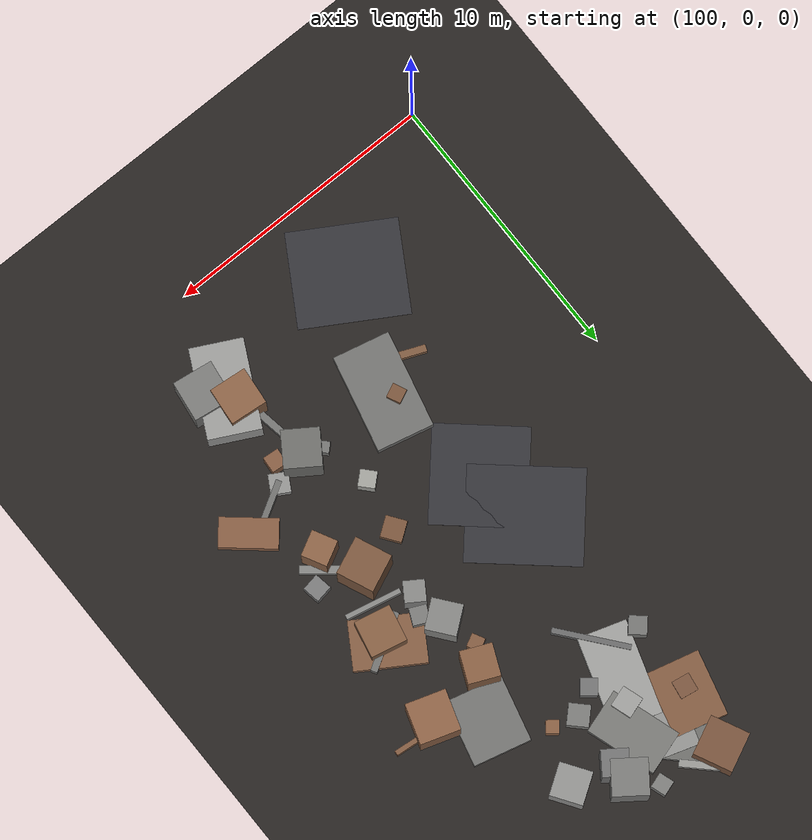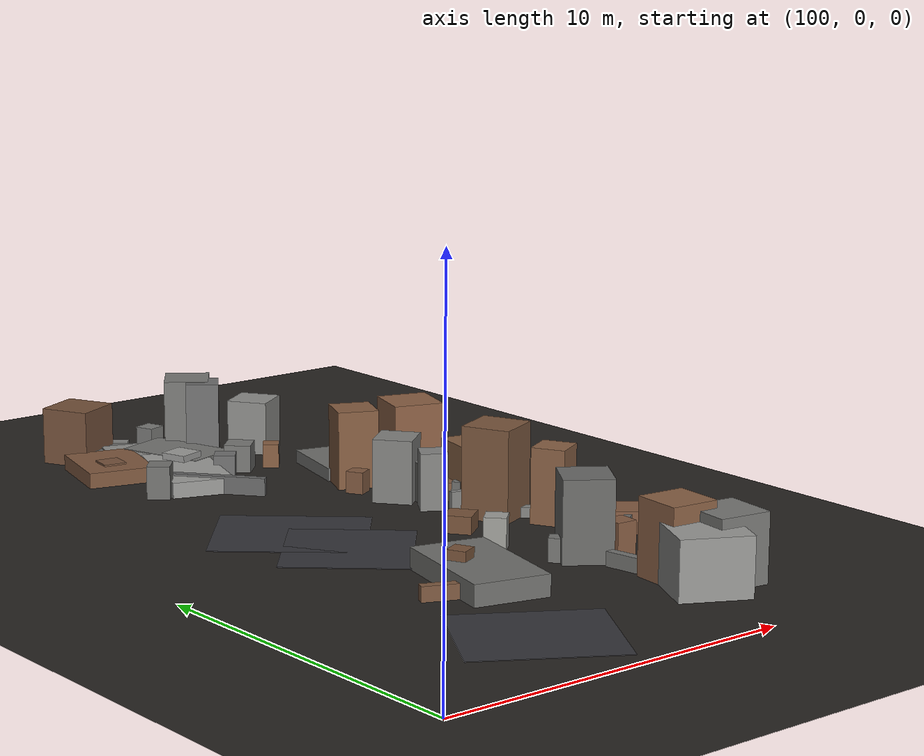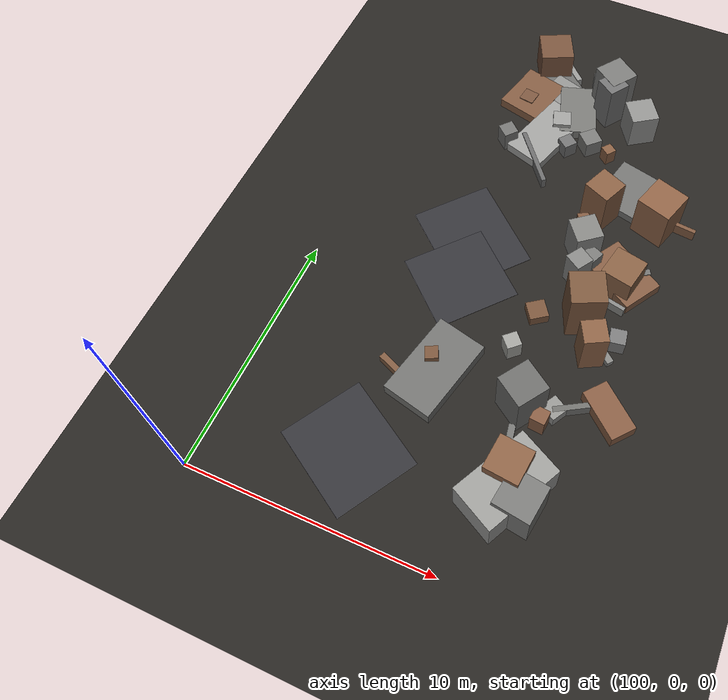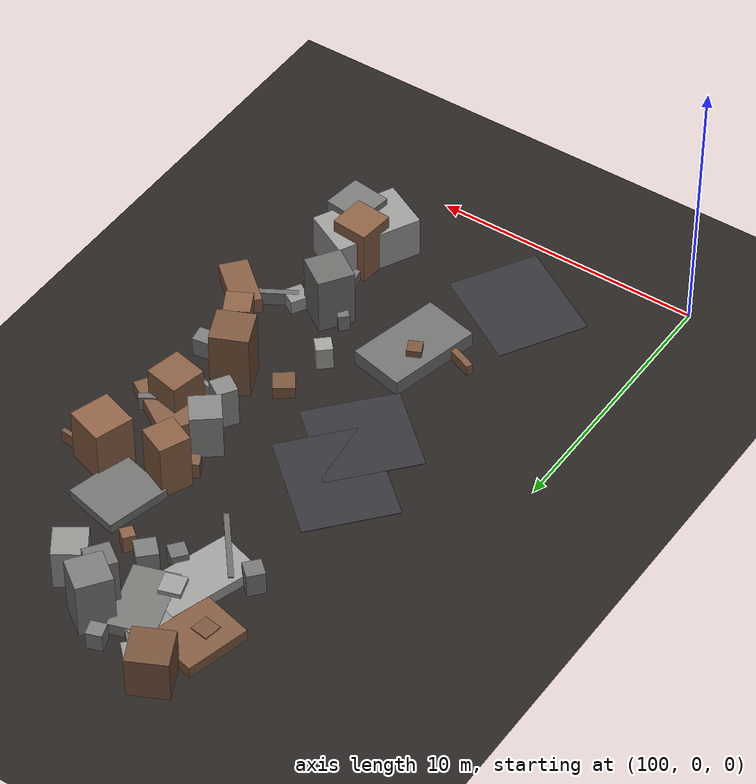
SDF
<sdf version="1.6">
 <world name="navitas_arena">
  <model name="ground_plane">
   <static>true</static>
   <link name="link">
    <collision name="collision">
     <geometry><plane><normal>0 0 1</normal><size>400 400</size></plane></geometry>
     <surface><friction><ode><mu>0.750</mu><mu2>0.750</mu2></ode></friction></surface>
    </collision>
    <visual name="visual">
     <cast_shadows>false</cast_shadows>
     <geometry><plane><normal>0 0 1</normal><size>400 400</size></plane></geometry>
     <material><ambient>0.150 0.140 0.130 1</ambient><diffuse>0.150 0.140 0.130 1</diffuse></material>
    </visual>
   </link>
  </model>
  <model name="road_zor_3_12">
   <static>true</static>
   <pose>105.164 2.889 0.040 0 0 2.604</pose>
   <link name="link">
    <collision name="col"><geometry><box><size>3.940 3.400 0.020</size></box></geometry></collision>
    <visual name="vis">
     <geometry><box><size>3.940 3.400 0.020</size></box></geometry>
     <material><ambient>0.20 0.20 0.22 1</ambient><diffuse>0.20 0.20 0.22 1</diffuse></material>
    </visual>
   </link>
  </model>
  <model name="road_zor_3_16">
   <static>true</static>
   <pose>106.045 11.153 0.040 0 0 0.851</pose>
   <link name="link">
    <collision name="col"><geometry><box><size>3.501 3.400 0.020</size></box></geometry></collision>
    <visual name="vis">
     <geometry><box><size>3.501 3.400 0.020</size></box></geometry>
     <material><ambient>0.20 0.20 0.22 1</ambient><diffuse>0.20 0.20 0.22 1</diffuse></material>
    </visual>
   </link>
  </model>
  <model name="road_zor_3_17">
   <static>true</static>
   <pose>105.694 13.180 0.040 0 0 2.427</pose>
   <link name="link">
    <collision name="col"><geometry><box><size>4.101 3.400 0.020</size></box></geometry></collision>
    <visual name="vis">
     <geometry><box><size>4.101 3.400 0.020</size></box></geometry>
     <material><ambient>0.20 0.20 0.22 1</ambient><diffuse>0.20 0.20 0.22 1</diffuse></material>
    </visual>
   </link>
  </model>
  <model name="deb_zor_10">
   <static>true</static>
   <pose>108.785 21.783 1.105 0 0 0.958</pose>
   <link name="link">
    <collision name="col"><geometry><box><size>0.952 0.952 2.209</size></box></geometry></collision>
    <visual name="vis">
     <geometry><box><size>0.952 0.952 2.209</size></box></geometry>
     <material><ambient>0.44 0.44 0.44 1</ambient><diffuse>0.44 0.44 0.44 1</diffuse></material>
    </visual>
   </link>
  </model>
  <model name="deb_zor_15">
   <static>true</static>
   <pose>109.598 7.117 0.321 0 0 2.331</pose>
   <link name="link">
    <collision name="col"><geometry><box><size>0.403 0.403 0.643</size></box></geometry></collision>
    <visual name="vis">
     <geometry><box><size>0.403 0.403 0.643</size></box></geometry>
     <material><ambient>0.45 0.45 0.44 1</ambient><diffuse>0.45 0.45 0.44 1</diffuse></material>
    </visual>
   </link>
  </model>
  <model name="deb_zor_16">
   <static>true</static>
   <pose>106.533 7.266 0.431 0 0 2.003</pose>
   <link name="link">
    <collision name="col"><geometry><box><size>0.523 0.523 0.862</size></box></geometry></collision>
    <visual name="vis">
     <geometry><box><size>0.523 0.523 0.862</size></box></geometry>
     <material><ambient>0.47 0.33 0.23 1</ambient><diffuse>0.47 0.33 0.23 1</diffuse></material>
    </visual>
   </link>
  </model>
  <model name="deb_zor_25">
   <static>true</static>
   <pose>110.323 6.868 1.115 0 0 0.977</pose>
   <link name="link">
    <collision name="col"><geometry><box><size>1.346 1.346 2.230</size></box></geometry></collision>
    <visual name="vis">
     <geometry><box><size>1.346 1.346 2.230</size></box></geometry>
     <material><ambient>0.42 0.42 0.41 1</ambient><diffuse>0.42 0.42 0.41 1</diffuse></material>
    </visual>
   </link>
  </model>
  <model name="deb_zor_44">
   <static>true</static>
   <pose>112.557 7.672 0.268 0 0 0.530</pose>
   <link name="link">
    <collision name="col"><geometry><box><size>2.456 0.216 0.537</size></box></geometry></collision>
    <visual name="vis">
     <geometry><box><size>2.456 0.216 0.537</size></box></geometry>
     <material><ambient>0.43 0.43 0.42 1</ambient><diffuse>0.43 0.43 0.42 1</diffuse></material>
    </visual>
   </link>
  </model>
  <model name="deb_zor_48">
   <static>true</static>
   <pose>112.064 13.667 0.252 0 0 2.584</pose>
   <link name="link">
    <collision name="col"><geometry><box><size>2.591 1.748 0.505</size></box></geometry></collision>
    <visual name="vis">
     <geometry><box><size>2.591 1.748 0.505</size></box></geometry>
     <material><ambient>0.51 0.36 0.26 1</ambient><diffuse>0.51 0.36 0.26 1</diffuse></material>
    </visual>
   </link>
  </model>
  <model name="deb_zor_80">
   <static>true</static>
   <pose>106.430 23.582 0.218 0 0 2.368</pose>
   <link name="link">
    <collision name="col"><geometry><box><size>1.550 0.252 0.436</size></box></geometry></collision>
    <visual name="vis">
     <geometry><box><size>1.550 0.252 0.436</size></box></geometry>
     <material><ambient>0.58 0.58 0.57 1</ambient><diffuse>0.58 0.58 0.57 1</diffuse></material>
    </visual>
   </link>
  </model>
  <model name="deb_zor_90">
   <static>true</static>
   <pose>111.975 9.892 1.053 0 0 2.058</pose>
   <link name="link">
    <collision name="col"><geometry><box><size>0.951 0.951 2.106</size></box></geometry></collision>
    <visual name="vis">
     <geometry><box><size>0.951 0.951 2.106</size></box></geometry>
     <material><ambient>0.54 0.38 0.27 1</ambient><diffuse>0.54 0.38 0.27 1</diffuse></material>
    </visual>
   </link>
  </model>
  <model name="deb_zor_95">
   <static>true</static>
   <pose>106.635 17.911 0.254 0 0 2.252</pose>
   <link name="link">
    <collision name="col"><geometry><box><size>2.767 0.195 0.508</size></box></geometry></collision>
    <visual name="vis">
     <geometry><box><size>2.767 0.195 0.508</size></box></geometry>
     <material><ambient>0.41 0.41 0.41 1</ambient><diffuse>0.41 0.41 0.41 1</diffuse></material>
    </visual>
   </link>
  </model>
  <model name="deb_zor_96">
   <static>true</static>
   <pose>105.555 23.494 0.812 0 0 2.023</pose>
   <link name="link">
    <collision name="col"><geometry><box><size>1.450 1.450 1.625</size></box></geometry></collision>
    <visual name="vis">
     <geometry><box><size>1.450 1.450 1.625</size></box></geometry>
     <material><ambient>0.46 0.32 0.23 1</ambient><diffuse>0.46 0.32 0.23 1</diffuse></material>
    </visual>
   </link>
  </model>
  <model name="deb_zor_104">
   <static>true</static>
   <pose>112.147 13.606 0.280 0 0 0.540</pose>
   <link name="link">
    <collision name="col"><geometry><box><size>2.168 0.245 0.561</size></box></geometry></collision>
    <visual name="vis">
     <geometry><box><size>2.168 0.245 0.561</size></box></geometry>
     <material><ambient>0.44 0.44 0.43 1</ambient><diffuse>0.44 0.44 0.43 1</diffuse></material>
    </visual>
   </link>
  </model>
  <model name="deb_zor_105">
   <static>true</static>
   <pose>109.767 15.569 0.311 0 0 2.051</pose>
   <link name="link">
    <collision name="col"><geometry><box><size>0.497 0.497 0.622</size></box></geometry></collision>
    <visual name="vis">
     <geometry><box><size>0.497 0.497 0.622</size></box></geometry>
     <material><ambient>0.50 0.35 0.25 1</ambient><diffuse>0.50 0.35 0.25 1</diffuse></material>
    </visual>
   </link>
  </model>
  <model name="deb_zor_110">
   <static>true</static>
   <pose>105.181 21.145 0.244 0 0 1.419</pose>
   <link name="link">
    <collision name="col"><geometry><box><size>0.660 0.660 0.487</size></box></geometry></collision>
    <visual name="vis">
     <geometry><box><size>0.660 0.660 0.487</size></box></geometry>
     <material><ambient>0.47 0.33 0.24 1</ambient><diffuse>0.47 0.33 0.24 1</diffuse></material>
    </visual>
   </link>
  </model>
  <model name="deb_zor_113">
   <static>true</static>
   <pose>105.613 6.257 0.203 0 0 2.752</pose>
   <link name="link">
    <collision name="col"><geometry><box><size>1.916 0.252 0.406</size></box></geometry></collision>
    <visual name="vis">
     <geometry><box><size>1.916 0.252 0.406</size></box></geometry>
     <material><ambient>0.49 0.35 0.25 1</ambient><diffuse>0.49 0.35 0.25 1</diffuse></material>
    </visual>
   </link>
  </model>
  <model name="deb_zor_114">
   <static>true</static>
   <pose>107.523 21.267 0.230 0 0 1.885</pose>
   <link name="link">
    <collision name="col"><geometry><box><size>2.643 1.626 0.459</size></box></geometry></collision>
    <visual name="vis">
     <geometry><box><size>2.643 1.626 0.459</size></box></geometry>
     <material><ambient>0.46 0.46 0.45 1</ambient><diffuse>0.46 0.46 0.45 1</diffuse></material>
    </visual>
   </link>
  </model>
  <model name="deb_zor_116">
   <static>true</static>
   <pose>113.159 16.905 0.257 0 0 3.043</pose>
   <link name="link">
    <collision name="col"><geometry><box><size>2.148 0.173 0.513</size></box></geometry></collision>
    <visual name="vis">
     <geometry><box><size>2.148 0.173 0.513</size></box></geometry>
     <material><ambient>0.50 0.35 0.25 1</ambient><diffuse>0.50 0.35 0.25 1</diffuse></material>
    </visual>
   </link>
  </model>
  <model name="deb_zor_125">
   <static>true</static>
   <pose>110.701 13.689 0.558 0 0 2.713</pose>
   <link name="link">
    <collision name="col"><geometry><box><size>0.617 0.617 1.115</size></box></geometry></collision>
    <visual name="vis">
     <geometry><box><size>0.617 0.617 1.115</size></box></geometry>
     <material><ambient>0.47 0.47 0.46 1</ambient><diffuse>0.47 0.47 0.46 1</diffuse></material>
    </visual>
   </link>
  </model>
  <model name="deb_zor_130">
   <static>true</static>
   <pose>109.143 8.936 0.444 0 0 2.312</pose>
   <link name="link">
    <collision name="col"><geometry><box><size>0.601 0.601 0.888</size></box></geometry></collision>
    <visual name="vis">
     <geometry><box><size>0.601 0.601 0.888</size></box></geometry>
     <material><ambient>0.62 0.62 0.60 1</ambient><diffuse>0.62 0.62 0.60 1</diffuse></material>
    </visual>
   </link>
  </model>
  <model name="deb_zor_131">
   <static>true</static>
   <pose>109.495 10.782 0.242 0 0 2.193</pose>
   <link name="link">
    <collision name="col"><geometry><box><size>0.769 0.769 0.485</size></box></geometry></collision>
    <visual name="vis">
     <geometry><box><size>0.769 0.769 0.485</size></box></geometry>
     <material><ambient>0.47 0.33 0.23 1</ambient><diffuse>0.47 0.33 0.23 1</diffuse></material>
    </visual>
   </link>
  </model>
  <model name="deb_zor_132">
   <static>true</static>
   <pose>111.169 11.312 1.278 0 0 0.412</pose>
   <link name="link">
    <collision name="col"><geometry><box><size>1.383 1.383 2.555</size></box></geometry></collision>
    <visual name="vis">
     <geometry><box><size>1.383 1.383 2.555</size></box></geometry>
     <material><ambient>0.48 0.34 0.24 1</ambient><diffuse>0.48 0.34 0.24 1</diffuse></material>
    </visual>
   </link>
  </model>
  <model name="deb_zor_153">
   <static>true</static>
   <pose>107.062 20.345 0.316 0 0 1.881</pose>
   <link name="link">
    <collision name="col"><geometry><box><size>0.786 0.786 0.633</size></box></geometry></collision>
    <visual name="vis">
     <geometry><box><size>0.786 0.786 0.633</size></box></geometry>
     <material><ambient>0.61 0.61 0.60 1</ambient><diffuse>0.61 0.61 0.60 1</diffuse></material>
    </visual>
   </link>
  </model>
  <model name="deb_zor_154">
   <static>true</static>
   <pose>111.200 6.491 0.477 0 0 1.488</pose>
   <link name="link">
    <collision name="col"><geometry><box><size>0.590 0.590 0.954</size></box></geometry></collision>
    <visual name="vis">
     <geometry><box><size>0.590 0.590 0.954</size></box></geometry>
     <material><ambient>0.52 0.36 0.26 1</ambient><diffuse>0.52 0.36 0.26 1</diffuse></material>
    </visual>
   </link>
  </model>
  <model name="deb_zor_157">
   <static>true</static>
   <pose>111.546 7.138 0.268 0 0 2.619</pose>
   <link name="link">
    <collision name="col"><geometry><box><size>0.713 0.713 0.536</size></box></geometry></collision>
    <visual name="vis">
     <geometry><box><size>0.713 0.713 0.536</size></box></geometry>
     <material><ambient>0.57 0.57 0.56 1</ambient><diffuse>0.57 0.57 0.56 1</diffuse></material>
    </visual>
   </link>
  </model>
  <model name="deb_zor_159">
   <static>true</static>
   <pose>108.704 22.465 1.110 0 0 0.942</pose>
   <link name="link">
    <collision name="col"><geometry><box><size>1.289 1.289 2.219</size></box></geometry></collision>
    <visual name="vis">
     <geometry><box><size>1.289 1.289 2.219</size></box></geometry>
     <material><ambient>0.47 0.47 0.46 1</ambient><diffuse>0.47 0.47 0.46 1</diffuse></material>
    </visual>
   </link>
  </model>
  <model name="deb_zor_160">
   <static>true</static>
   <pose>106.109 22.343 0.195 0 0 0.794</pose>
   <link name="link">
    <collision name="col"><geometry><box><size>2.033 1.423 0.391</size></box></geometry></collision>
    <visual name="vis">
     <geometry><box><size>2.033 1.423 0.391</size></box></geometry>
     <material><ambient>0.42 0.42 0.41 1</ambient><diffuse>0.42 0.42 0.41 1</diffuse></material>
    </visual>
   </link>
  </model>
  <model name="deb_zor_162">
   <static>true</static>
   <pose>110.336 21.368 0.780 0 0 0.592</pose>
   <link name="link">
    <collision name="col"><geometry><box><size>1.196 1.196 1.561</size></box></geometry></collision>
    <visual name="vis">
     <geometry><box><size>1.196 1.196 1.561</size></box></geometry>
     <material><ambient>0.56 0.56 0.55 1</ambient><diffuse>0.56 0.56 0.55 1</diffuse></material>
    </visual>
   </link>
  </model>
  <model name="deb_zor_168">
   <static>true</static>
   <pose>108.624 19.679 0.394 0 0 0.784</pose>
   <link name="link">
    <collision name="col"><geometry><box><size>0.768 0.768 0.788</size></box></geometry></collision>
    <visual name="vis">
     <geometry><box><size>0.768 0.768 0.788</size></box></geometry>
     <material><ambient>0.47 0.47 0.46 1</ambient><diffuse>0.47 0.47 0.46 1</diffuse></material>
    </visual>
   </link>
  </model>
  <model name="deb_zor_172">
   <static>true</static>
   <pose>105.303 21.391 0.219 0 0 1.325</pose>
   <link name="link">
    <collision name="col"><geometry><box><size>2.384 1.965 0.438</size></box></geometry></collision>
    <visual name="vis">
     <geometry><box><size>2.384 1.965 0.438</size></box></geometry>
     <material><ambient>0.50 0.35 0.25 1</ambient><diffuse>0.50 0.35 0.25 1</diffuse></material>
    </visual>
   </link>
  </model>
  <model name="deb_zor_173">
   <static>true</static>
   <pose>105.154 18.570 0.468 0 0 2.416</pose>
   <link name="link">
    <collision name="col"><geometry><box><size>0.650 0.650 0.936</size></box></geometry></collision>
    <visual name="vis">
     <geometry><box><size>0.650 0.650 0.936</size></box></geometry>
     <material><ambient>0.45 0.45 0.44 1</ambient><diffuse>0.45 0.45 0.44 1</diffuse></material>
    </visual>
   </link>
  </model>
  <model name="deb_zor_176">
   <static>true</static>
   <pose>111.979 10.560 0.138 0 0 2.457</pose>
   <link name="link">
    <collision name="col"><geometry><box><size>2.279 0.284 0.276</size></box></geometry></collision>
    <visual name="vis">
     <geometry><box><size>2.279 0.284 0.276</size></box></geometry>
     <material><ambient>0.51 0.51 0.50 1</ambient><diffuse>0.51 0.51 0.50 1</diffuse></material>
    </visual>
   </link>
  </model>
  <model name="deb_zor_178">
   <static>true</static>
   <pose>110.146 14.314 0.896 0 0 0.671</pose>
   <link name="link">
    <collision name="col"><geometry><box><size>1.118 1.118 1.793</size></box></geometry></collision>
    <visual name="vis">
     <geometry><box><size>1.118 1.118 1.793</size></box></geometry>
     <material><ambient>0.51 0.51 0.50 1</ambient><diffuse>0.51 0.51 0.50 1</diffuse></material>
    </visual>
   </link>
  </model>
  <model name="deb_zor_183">
   <static>true</static>
   <pose>107.748 19.144 0.357 0 0 2.461</pose>
   <link name="link">
    <collision name="col"><geometry><box><size>0.604 0.604 0.713</size></box></geometry></collision>
    <visual name="vis">
     <geometry><box><size>0.604 0.604 0.713</size></box></geometry>
     <material><ambient>0.44 0.44 0.44 1</ambient><diffuse>0.44 0.44 0.44 1</diffuse></material>
    </visual>
   </link>
  </model>
  <model name="deb_zor_184">
   <static>true</static>
   <pose>111.643 12.352 0.246 0 0 2.931</pose>
   <link name="link">
    <collision name="col"><geometry><box><size>2.060 0.168 0.493</size></box></geometry></collision>
    <visual name="vis">
     <geometry><box><size>2.060 0.168 0.493</size></box></geometry>
     <material><ambient>0.52 0.52 0.51 1</ambient><diffuse>0.52 0.52 0.51 1</diffuse></material>
    </visual>
   </link>
  </model>
  <model name="deb_zor_186">
   <static>true</static>
   <pose>106.308 21.411 0.214 0 0 1.263</pose>
   <link name="link">
    <collision name="col"><geometry><box><size>2.840 1.518 0.427</size></box></geometry></collision>
    <visual name="vis">
     <geometry><box><size>2.840 1.518 0.427</size></box></geometry>
     <material><ambient>0.56 0.56 0.55 1</ambient><diffuse>0.56 0.56 0.55 1</diffuse></material>
    </visual>
   </link>
  </model>
  <model name="deb_zor_187">
   <static>true</static>
   <pose>112.097 13.328 0.779 0 0 2.931</pose>
   <link name="link">
    <collision name="col"><geometry><box><size>1.335 1.335 1.559</size></box></geometry></collision>
    <visual name="vis">
     <geometry><box><size>1.335 1.335 1.559</size></box></geometry>
     <material><ambient>0.52 0.37 0.26 1</ambient><diffuse>0.52 0.37 0.26 1</diffuse></material>
    </visual>
   </link>
  </model>
  <model name="deb_zor_198">
   <static>true</static>
   <pose>112.802 10.761 0.373 0 0 1.742</pose>
   <link name="link">
    <collision name="col"><geometry><box><size>0.642 0.642 0.745</size></box></geometry></collision>
    <visual name="vis">
     <geometry><box><size>0.642 0.642 0.745</size></box></geometry>
     <material><ambient>0.47 0.47 0.47 1</ambient><diffuse>0.47 0.47 0.47 1</diffuse></material>
    </visual>
   </link>
  </model>
  <model name="deb_zor_212">
   <static>true</static>
   <pose>113.430 7.817 0.307 0 0 2.438</pose>
   <link name="link">
    <collision name="col"><geometry><box><size>2.073 1.050 0.614</size></box></geometry></collision>
    <visual name="vis">
     <geometry><box><size>2.073 1.050 0.614</size></box></geometry>
     <material><ambient>0.52 0.36 0.26 1</ambient><diffuse>0.52 0.36 0.26 1</diffuse></material>
    </visual>
   </link>
  </model>
  <model name="deb_zor_225">
   <static>true</static>
   <pose>111.264 11.681 0.334 0 0 2.572</pose>
   <link name="link">
    <collision name="col"><geometry><box><size>0.538 0.538 0.668</size></box></geometry></collision>
    <visual name="vis">
     <geometry><box><size>0.538 0.538 0.668</size></box></geometry>
     <material><ambient>0.48 0.34 0.24 1</ambient><diffuse>0.48 0.34 0.24 1</diffuse></material>
    </visual>
   </link>
  </model>
  <model name="deb_zor_228">
   <static>true</static>
   <pose>106.667 19.477 0.223 0 0 1.262</pose>
   <link name="link">
    <collision name="col"><geometry><box><size>3.390 1.794 0.445</size></box></geometry></collision>
    <visual name="vis">
     <geometry><box><size>3.390 1.794 0.445</size></box></geometry>
     <material><ambient>0.61 0.61 0.60 1</ambient><diffuse>0.61 0.61 0.60 1</diffuse></material>
    </visual>
   </link>
  </model>
  <model name="deb_zor_244">
   <static>true</static>
   <pose>111.671 3.212 0.934 0 0 1.436</pose>
   <link name="link">
    <collision name="col"><geometry><box><size>1.485 1.485 1.868</size></box></geometry></collision>
    <visual name="vis">
     <geometry><box><size>1.485 1.485 1.868</size></box></geometry>
     <material><ambient>0.47 0.47 0.46 1</ambient><diffuse>0.47 0.47 0.46 1</diffuse></material>
    </visual>
   </link>
  </model>
  <model name="deb_zor_255">
   <static>true</static>
   <pose>112.571 16.732 1.015 0 0 2.831</pose>
   <link name="link">
    <collision name="col"><geometry><box><size>1.469 1.469 2.031</size></box></geometry></collision>
    <visual name="vis">
     <geometry><box><size>1.469 1.469 2.031</size></box></geometry>
     <material><ambient>0.55 0.38 0.27 1</ambient><diffuse>0.55 0.38 0.27 1</diffuse></material>
    </visual>
   </link>
  </model>
  <model name="deb_zor_264">
   <static>true</static>
   <pose>111.116 17.883 0.186 0 0 1.329</pose>
   <link name="link">
    <collision name="col"><geometry><box><size>2.395 2.123 0.371</size></box></geometry></collision>
    <visual name="vis">
     <geometry><box><size>2.395 2.123 0.371</size></box></geometry>
     <material><ambient>0.44 0.44 0.43 1</ambient><diffuse>0.44 0.44 0.43 1</diffuse></material>
    </visual>
   </link>
  </model>
  <model name="deb_zor_267">
   <static>true</static>
   <pose>107.891 23.267 0.353 0 0 0.320</pose>
   <link name="link">
    <collision name="col"><geometry><box><size>0.565 0.565 0.706</size></box></geometry></collision>
    <visual name="vis">
     <geometry><box><size>0.565 0.565 0.706</size></box></geometry>
     <material><ambient>0.48 0.48 0.47 1</ambient><diffuse>0.48 0.48 0.47 1</diffuse></material>
    </visual>
   </link>
  </model>
  <model name="deb_zor_270">
   <static>true</static>
   <pose>110.872 4.125 1.039 0 0 1.475</pose>
   <link name="link">
    <collision name="col"><geometry><box><size>1.367 1.367 2.078</size></box></geometry></collision>
    <visual name="vis">
     <geometry><box><size>1.367 1.367 2.078</size></box></geometry>
     <material><ambient>0.54 0.38 0.27 1</ambient><diffuse>0.54 0.38 0.27 1</diffuse></material>
    </visual>
   </link>
  </model>
  <model name="deb_zor_277">
   <static>true</static>
   <pose>109.561 19.425 0.346 0 0 2.472</pose>
   <link name="link">
    <collision name="col"><geometry><box><size>0.458 0.458 0.692</size></box></geometry></collision>
    <visual name="vis">
     <geometry><box><size>0.458 0.458 0.692</size></box></geometry>
     <material><ambient>0.53 0.37 0.26 1</ambient><diffuse>0.53 0.37 0.26 1</diffuse></material>
    </visual>
   </link>
  </model>
  <model name="deb_zor_281">
   <static>true</static>
   <pose>110.217 16.338 1.108 0 0 2.730</pose>
   <link name="link">
    <collision name="col"><geometry><box><size>1.162 1.162 2.217</size></box></geometry></collision>
    <visual name="vis">
     <geometry><box><size>1.162 1.162 2.217</size></box></geometry>
     <material><ambient>0.53 0.37 0.26 1</ambient><diffuse>0.53 0.37 0.26 1</diffuse></material>
    </visual>
   </link>
  </model>
  <model name="deb_zor_300">
   <static>true</static>
   <pose>110.559 4.801 0.201 0 0 1.742</pose>
   <link name="link">
    <collision name="col"><geometry><box><size>2.404 0.259 0.402</size></box></geometry></collision>
    <visual name="vis">
     <geometry><box><size>2.404 0.259 0.402</size></box></geometry>
     <material><ambient>0.45 0.45 0.44 1</ambient><diffuse>0.45 0.45 0.44 1</diffuse></material>
    </visual>
   </link>
  </model>
  <model name="deb_zor_301">
   <static>true</static>
   <pose>106.826 6.891 0.293 0 0 1.342</pose>
   <link name="link">
    <collision name="col"><geometry><box><size>3.541 2.087 0.586</size></box></geometry></collision>
    <visual name="vis">
     <geometry><box><size>3.541 2.087 0.586</size></box></geometry>
     <material><ambient>0.44 0.44 0.43 1</ambient><diffuse>0.44 0.44 0.43 1</diffuse></material>
    </visual>
   </link>
  </model>
  <model name="chic_zor_3">
   <static>true</static>
   <pose>111.022 3.591 0.800 0 0 1.102</pose>
   <link name="link">
    <collision name="col"><geometry><box><size>3.206 1.914 1.600</size></box></geometry></collision>
    <visual name="vis">
     <geometry><box><size>3.206 1.914 1.600</size></box></geometry>
     <material><ambient>0.60 0.60 0.59 1</ambient><diffuse>0.60 0.60 0.59 1</diffuse></material>
    </visual>
   </link>
  </model>
  <model name="chic_zor_5">
   <static>true</static>
   <pose>110.358 12.991 0.800 0 0 0.995</pose>
   <link name="link">
    <collision name="col"><geometry><box><size>0.758 0.758 1.600</size></box></geometry></collision>
    <visual name="vis">
     <geometry><box><size>0.758 0.758 1.600</size></box></geometry>
     <material><ambient>0.52 0.52 0.51 1</ambient><diffuse>0.52 0.52 0.51 1</diffuse></material>
    </visual>
   </link>
  </model>
 </world>
</sdf>
